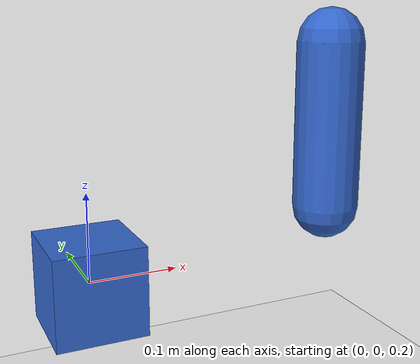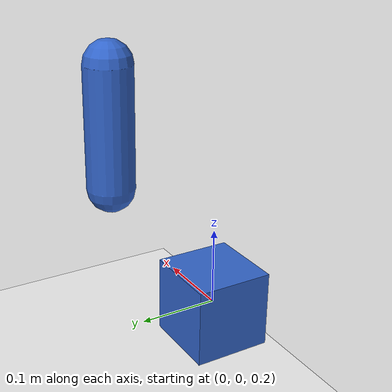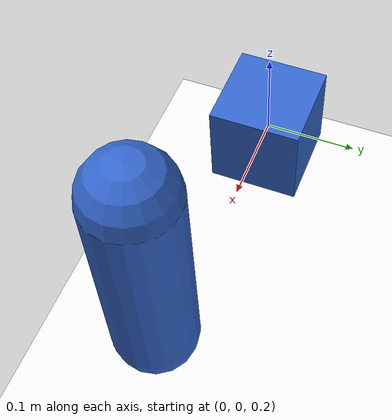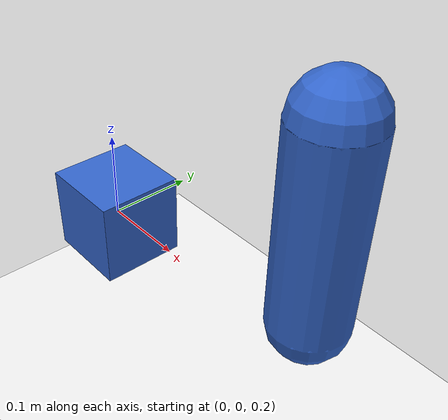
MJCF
<mujoco model="bright_g1_demo">
  <compiler angle="degree" coordinate="local"/>
  <option timestep="0.002"/>

  <!-- white background -->
  <asset>
    <texture name="white_sky" type="skybox" builtin="gradient"
             rgb1="1 1 1" rgb2="1 1 1" width="256" height="256"/>
  </asset>

  <default>
    <geom group="1" rgba="0.2 0.4 0.8 1"/>
  </default>

  <worldbody>
    <!-- ground -->
    <geom name="ground" type="plane" size="5 5 0.1" rgba="0.95 0.95 0.95 1"/>

    <body name="box1" pos="0 0 0.2">
      <joint name="free" type="free"/>
      <geom type="box" size="0.05 0.05 0.05"/>
    </body>

    <body name="capsule1" pos="0.3 0 0.25">
      <joint name="hinge1" type="hinge" axis="0 1 0"/>
      <geom type="capsule" fromto="0 0 0  0 0 0.2" size="0.04"/>
    </body>
  </worldbody>

  <actuator>
    <motor name="hinge_m" joint="hinge1" ctrlrange="-1 1" gear="1"/>
  </actuator>
</mujoco>
